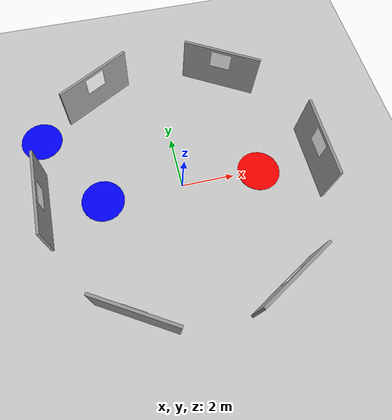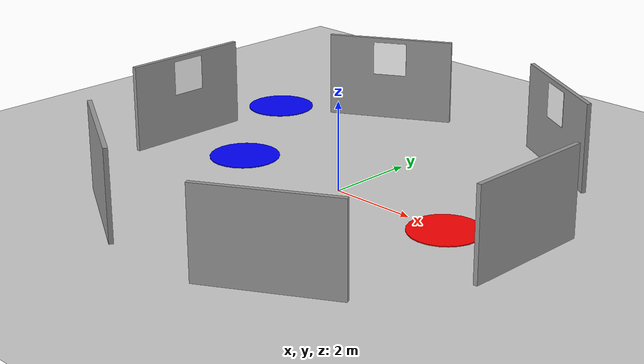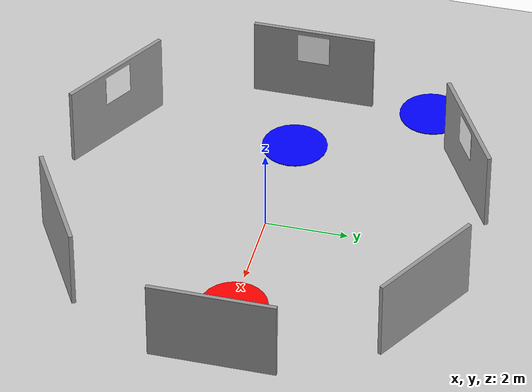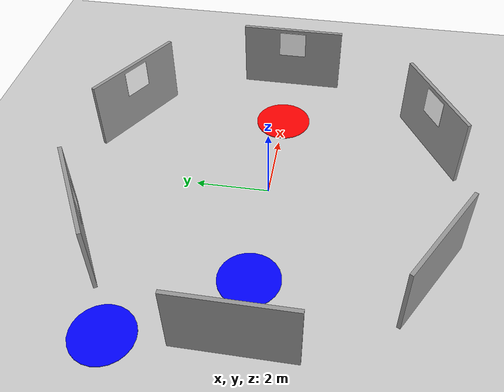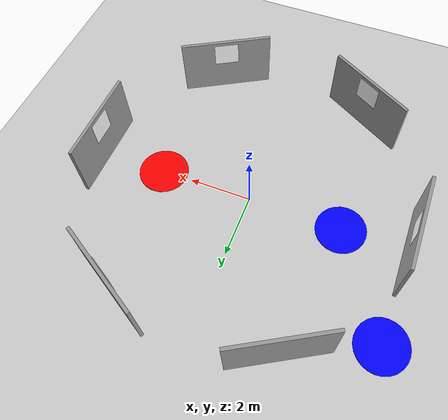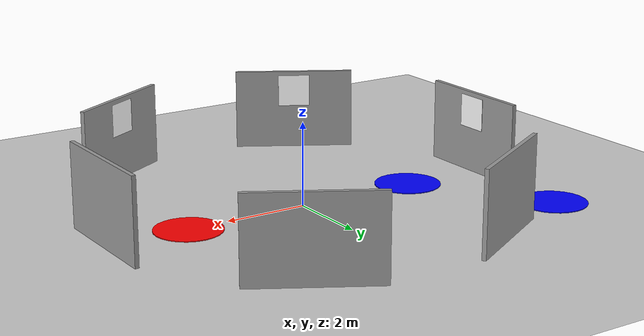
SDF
<?xml version="1.0" ?>
<sdf version="1.10">
  <world name="hexagon_world">
    <physics name="1ms" type="ignored">
      <max_step_size>0.001</max_step_size>
      <real_time_factor>1.0</real_time_factor>
    </physics>
    <plugin name="gz::sim::systems::Physics" filename="gz-sim-physics-system"/>
    <plugin name="gz::sim::systems::UserCommands" filename="gz-sim-user-commands-system"/>
    <plugin name="gz::sim::systems::SceneBroadcaster" filename="gz-sim-scene-broadcaster-system"/>
    <light type="directional" name="sun">
      <scene>
        <grid>false</grid>
        <shadows>false</shadows>
      </scene>
      <cast_shadows>true</cast_shadows>
      <pose>0 0 10 0 0 0</pose>
      <diffuse>0.8 0.8 0.8 1</diffuse>
      <specular>0.2 0.2 0.2 1</specular>
    </light>
    <model name="ground_plane">
        <static>true</static>
        <link name="link">
            <collision name="collision"><geometry><plane><normal>0 0 1</normal></plane></geometry></collision>
            <visual name="visual"><geometry><plane><normal>0 0 1</normal><size>100 100</size></plane></geometry>
            <material><ambient>0.8 0.8 0.8 1</ambient><diffuse>0.8 0.8 0.8 1</diffuse></material></visual>
        </link>
    </model>
    <model name="landing_pad_red">
        <static>true</static>
        <pose>3 0 0.01 0 0 0</pose>
        <link name="link">
            <visual name="visual"><geometry><cylinder><radius>0.8</radius><length>0.02</length></cylinder></geometry>
            <material><ambient>1.0 0.0 0.0 1</ambient><diffuse>1.0 0.0 0.0 1</diffuse></material></visual>
            <collision name="collision"><geometry><cylinder><radius>0.8</radius><length>0.02</length></cylinder></geometry></collision>
        </link>
    </model>
    <model name="landing_pad_blue">
        <static>true</static>
        <pose>-3 0 0.01 0 0 0</pose>
        <link name="link">
            <visual name="visual"><geometry><cylinder><radius>0.8</radius><length>0.02</length></cylinder></geometry>
            <material><ambient>0.0 0.0 1.0 1</ambient><diffuse>0.0 0.0 1.0 1</diffuse></material></visual>
            <collision name="collision"><geometry><cylinder><radius>0.8</radius><length>0.02</length></cylinder></geometry></collision>
        </link>
    </model>
    <model name="starting_point">
        <static>true</static>
        <pose>-5 3 0.01 0 0 0</pose>
        <link name="link">
            <visual name="visual"><geometry><cylinder><radius>0.8</radius><length>0.02</length></cylinder></geometry>
            <material><ambient>0.0 0.0 1.0 1</ambient><diffuse>0.0 0.0 1.0 1</diffuse></material></visual>
            <collision name="collision"><geometry><cylinder><radius>0.8</radius><length>0.02</length></cylinder></geometry></collision>
        </link>
    </model>

    <model name="wall_1">
      <static>true</static>
      <pose>5 0 1 0 0 1.57</pose>
      <link name="link">
        <visual name="v_wall">
          <geometry>
            <box>
              <size>3 0.1 2</size>
            </box>
          </geometry>
          <material>
            <ambient>0.6 0.6 0.6 1</ambient>
            <diffuse>0.6 0.6 0.6 1</diffuse>
          </material>
        </visual>
        <visual name="v_png">
          <pose>0 0.07 0.5 0 0 0</pose>
          <geometry>
            <box>
              <size>0.8 0.01 0.8</size>
            </box>
          </geometry>
          <material>
            <diffuse>1 1 1 1</diffuse>
            <pbr>
              <metal>
                <albedo_map>model://qr_wall/materials/textures/qrcode1.png</albedo_map>
              </metal>
            </pbr>
          </material>
        </visual>
        <collision name="c">
          <geometry>
            <box>
              <size>3 0.1 2</size>
            </box>
          </geometry>
        </collision>
      </link>
    </model>

    <model name="wall_2">
      <static>true</static>
      <pose>2.5 4.33 1 0 0 2.62</pose>
      <link name="link">
        <visual name="v_wall">
          <geometry>
            <box>
              <size>3 0.1 2</size>
            </box>
          </geometry>
          <material>
            <ambient>0.6 0.6 0.6 1</ambient>
            <diffuse>0.6 0.6 0.6 1</diffuse>
          </material>
        </visual>
        <visual name="v_png">
          <pose>0 0.07 0.5 0 0 0</pose>
          <geometry>
            <box>
              <size>0.8 0.01 0.8</size>
            </box>
          </geometry>
          <material>
            <diffuse>1 1 1 1</diffuse>
            <pbr>
              <metal>
                <albedo_map>model://qr_wall/materials/textures/qrcode2.png</albedo_map>
              </metal>
            </pbr>
          </material>
        </visual>
        <collision name="c">
          <geometry>
            <box>
              <size>3 0.1 2</size>
            </box>
          </geometry>
        </collision>
      </link>
    </model>

    <model name="wall_3">
      <static>true</static>
      <pose>-2.5 4.33 1 0 0 3.66</pose>
      <link name="link">
        <visual name="v_wall">
          <geometry>
            <box>
              <size>3 0.1 2</size>
            </box>
          </geometry>
          <material>
            <ambient>0.6 0.6 0.6 1</ambient>
            <diffuse>0.6 0.6 0.6 1</diffuse>
          </material>
        </visual>
        <visual name="v_png">
          <pose>0 0.07 0.5 0 0 0</pose>
          <geometry>
            <box>
              <size>0.8 0.01 0.8</size>
            </box>
          </geometry>
          <material>
            <diffuse>1 1 1 1</diffuse>
            <pbr>
              <metal>
                <albedo_map>model://qr_wall/materials/textures/qrcode3.png</albedo_map>
              </metal>
            </pbr>
          </material>
        </visual>
        <collision name="c">
          <geometry>
            <box>
              <size>3 0.1 2</size>
            </box>
          </geometry>
        </collision>
      </link>
    </model>

    <model name="wall_4">
      <static>true</static>
      <pose>-5 0 1 0 0 4.71</pose>
      <link name="link">
        <visual name="v_wall">
          <geometry>
            <box>
              <size>3 0.1 2</size>
            </box>
          </geometry>
          <material>
            <ambient>0.6 0.6 0.6 1</ambient>
            <diffuse>0.6 0.6 0.6 1</diffuse>
          </material>
        </visual>
        <visual name="v_png">
          <pose>0 0.07 0.5 0 0 0</pose>
          <geometry>
            <box>
              <size>0.8 0.01 0.8</size>
            </box>
          </geometry>
          <material>
            <diffuse>1 1 1 1</diffuse>
            <pbr>
              <metal>
                <albedo_map>model://qr_wall/materials/textures/qrcode4.png</albedo_map>
              </metal>
            </pbr>
          </material>
        </visual>
        <collision name="c">
          <geometry>
            <box>
              <size>3 0.1 2</size>
            </box>
          </geometry>
        </collision>
      </link>
    </model>

    <model name="wall_5">
      <static>true</static>
      <pose>-2.5 -4.33 1 0 0 5.76</pose>
      <link name="link">
        <visual name="v_wall">
          <geometry>
            <box>
              <size>3 0.1 2</size>
            </box>
          </geometry>
          <material>
            <ambient>0.6 0.6 0.6 1</ambient>
            <diffuse>0.6 0.6 0.6 1</diffuse>
          </material>
        </visual>
        <visual name="v_png">
          <pose>0 0.07 0.5 0 0 0</pose>
          <geometry>
            <box>
              <size>0.8 0.01 0.8</size>
            </box>
          </geometry>
          <material>
            <diffuse>1 1 1 1</diffuse>
            <pbr>
              <metal>
                <albedo_map>model://qr_wall/materials/textures/qrcode5.png</albedo_map>
              </metal>
            </pbr>
          </material>
        </visual>
        <collision name="c">
          <geometry>
            <box>
              <size>3 0.1 2</size>
            </box>
          </geometry>
        </collision>
      </link>
    </model>

    <model name="wall_6">
      <static>true</static>
      <pose>2.5 -4.33 1 0 0 0.52</pose>
      <link name="link">
        <visual name="v_wall">
          <geometry>
            <box>
              <size>3 0.1 2</size>
            </box>
          </geometry>
          <material>
            <ambient>0.6 0.6 0.6 1</ambient>
            <diffuse>0.6 0.6 0.6 1</diffuse>
          </material>
        </visual>
        <visual name="v_png">
          <pose>0 0.07 0.5 0 0 0</pose>
          <geometry>
            <box>
              <size>0.8 0.01 0.8</size>
            </box>
          </geometry>
          <material>
            <diffuse>1 1 1 1</diffuse>
            <pbr>
              <metal>
                <albedo_map>model://qr_wall/materials/textures/qrcode6.png</albedo_map>
              </metal>
            </pbr>
          </material>
        </visual>
        <collision name="c">
          <geometry>
            <box>
              <size>3 0.1 2</size>
            </box>
          </geometry>
        </collision>
      </link>
    </model>
  </world>
</sdf>
